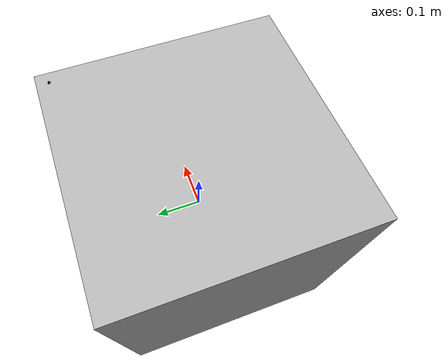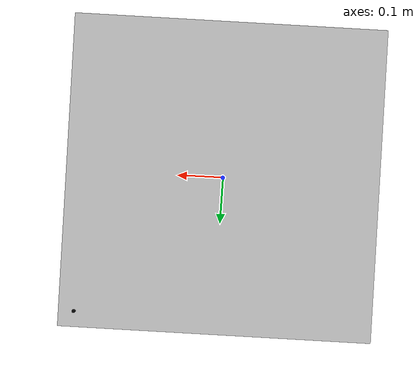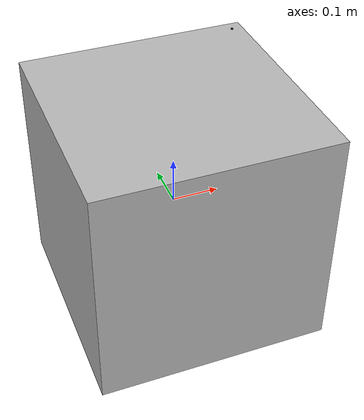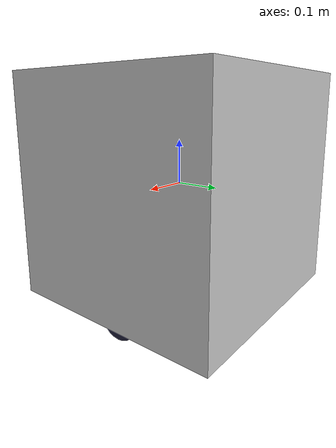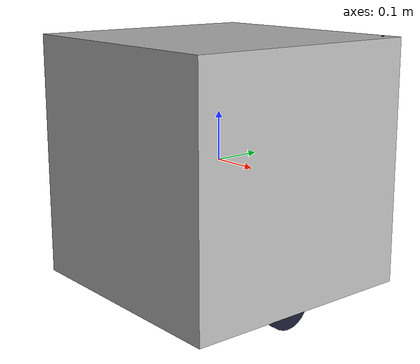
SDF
<?xml version="1.0"?>
<sdf version="1.6">
  <model name="Color Tutorial Model">
    <static>true</static>
    <link name="robot_link">
      <collision name="body_collision">
        <geometry>
          <box>
            <size>1 1 1</size>
          </box>
        </geometry>
      </collision>
      <visual name="wheel1_visual">
<material> <!-- Wheel material -->
          <ambient>0.1 0.1 0.1 1</ambient>
          <diffuse>0.1 0.1 0.2 1</diffuse>
          <specular>0 0 0 0</specular>
          <emissive>0 0 0 1</emissive>
        </material> <!-- End wheel material -->
        <pose>-0.2 0 -0.25 0 1.57079 0</pose>
        <geometry>
          <cylinder>
            <radius>0.05</radius>
            <length>0.02</length>
          </cylinder>
        </geometry>
      </visual>
      <visual name="wheel2_visual">
<material> <!-- Wheel material -->
          <ambient>0.1 0.1 0.1 1</ambient>
          <diffuse>0.1 0.1 0.2 1</diffuse>
          <specular>0 0 0 0</specular>
          <emissive>0 0 0 1</emissive>
        </material> <!-- End wheel material -->
        <pose>0.2 0 -0.25 0 1.57079 0</pose>
        <geometry>
          <cylinder>
            <radius>0.05</radius>
            <length>0.02</length>
          </cylinder>
        </geometry>
      </visual>
      <visual name="power_led_visual">
      <material> <!-- LED material -->
          <ambient>0 0 0 1</ambient>
          <diffuse>0 0 0 1</diffuse>
          <specular>0 0 0 0</specular>
          <emissive>0 1 0 1</emissive>
        </material> <!-- End LED material -->
        <pose>0.225 0.225 0.25 0 0 0</pose>
        <geometry>
          <sphere>
            <radius>0.003</radius>
          </sphere>
        </geometry>
      </visual>
      <visual name="body_visual">
<material> <!-- Body material -->
          <script>
            <uri>model://example_model/materials/scripts/repeated.material</uri>
            <name>RepeatedTexture</name>
          </script>
        </material> <!-- End Body Material -->
        <geometry>
          <box>
            <size>0.5 0.5 0.5</size>
          </box>
        </geometry>
      </visual>

    </link>
  </model>
</sdf>
